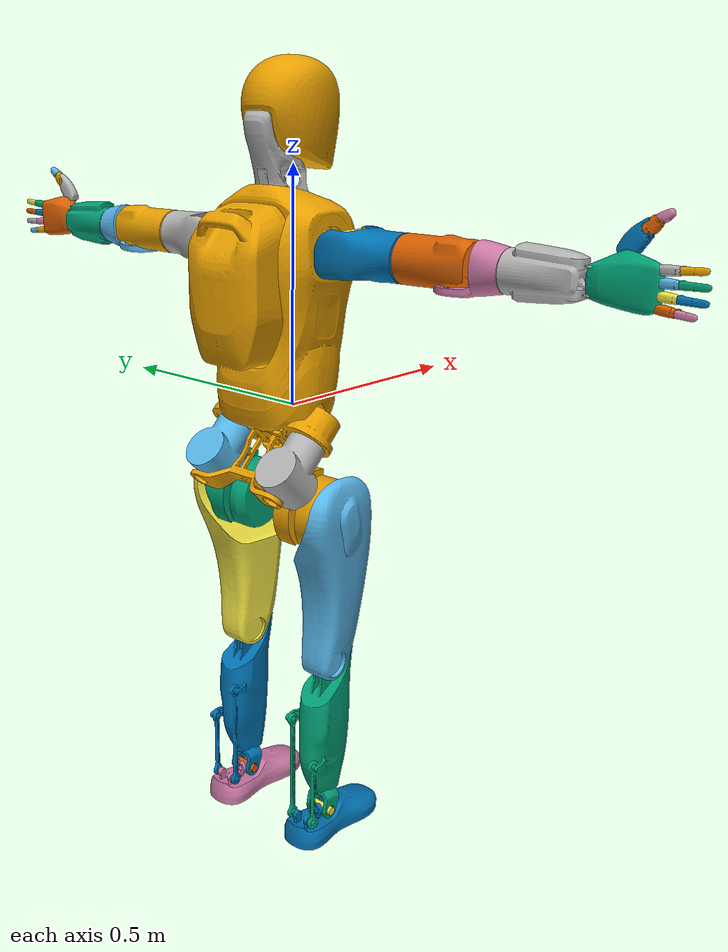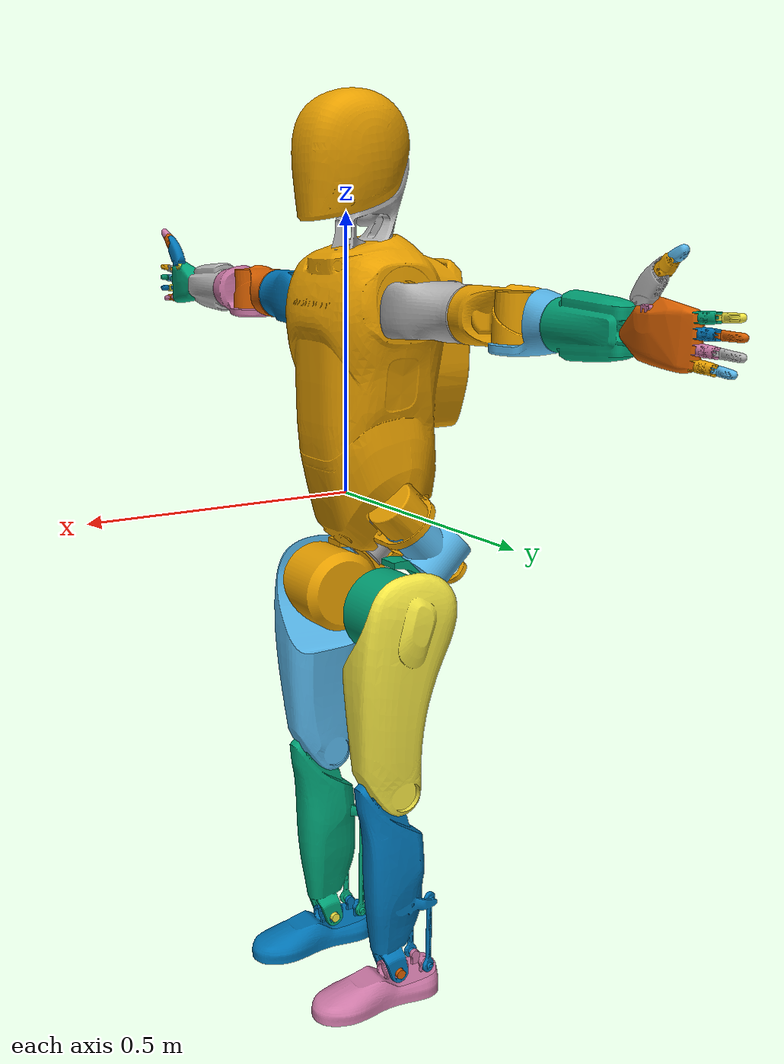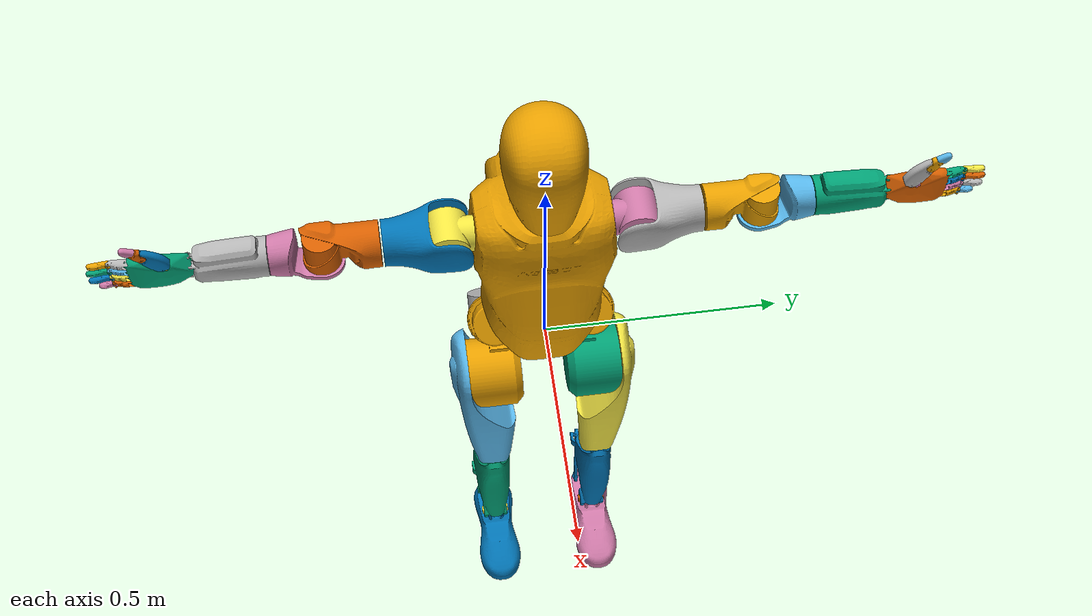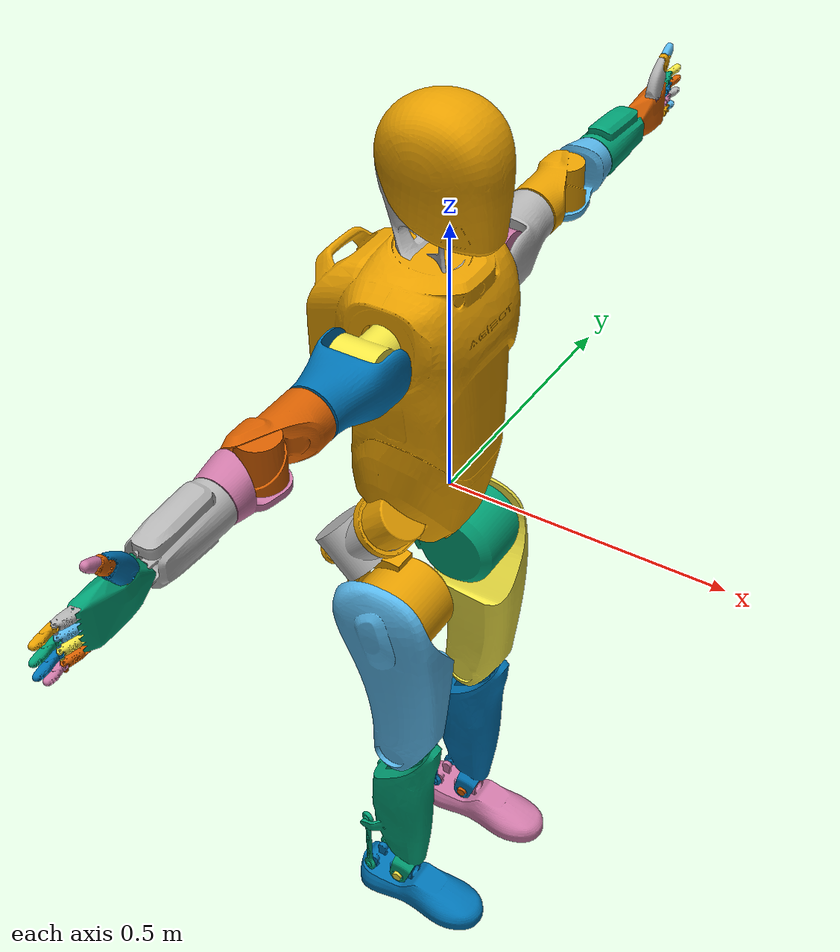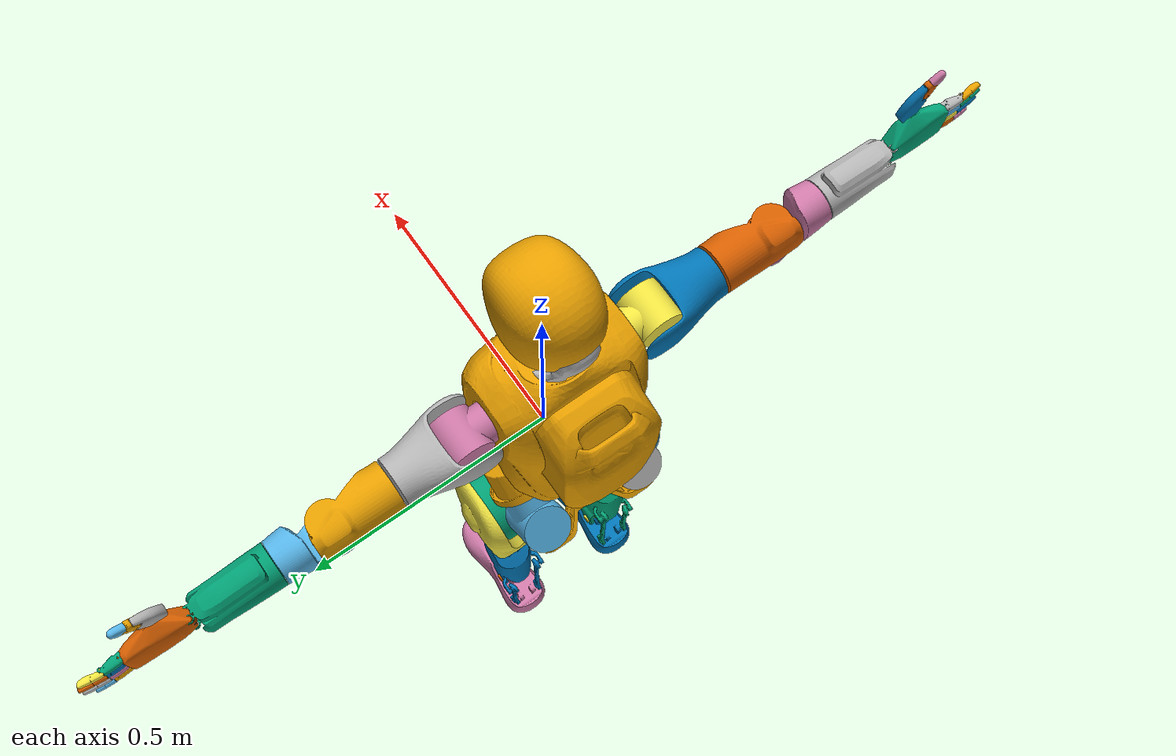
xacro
<?xml version="1.0" ?>
<!-- |    Complete Robot Description for Agibot A2                                     | -->
<!-- |    This file includes the base robot structure and both arms                    | -->
<robot name="Agibot A2" xmlns:xacro="http://www.ros.org/wiki/xacro">
	<!-- Include arm, hand and leg macros -->
	<xacro:include filename="$(find agibot_a2_description)/xacro/arm.xacro"/>
	<xacro:include filename="$(find agibot_a2_description)/xacro/hand.xacro"/>
	<xacro:include filename="$(find agibot_a2_description)/xacro/leg.xacro"/>

	<link name="base_link">
		<inertial>
			<origin xyz="-0.07088950 -0.00016512 0.16138088"/>
			<mass value="18.89945962"/>
			<inertia ixx="0.59376016" iyy="0.55503329" izz="0.18455985" ixy="0.00015891" ixz="0.00353796" iyz="-0.00043902"/>
		</inertial>
		<visual>
			<geometry>
				<mesh filename="file://$(find agibot_a2_description)/meshes/body/visual/body.obj"/>
			</geometry>
		</visual>
		<collision>
			<geometry>
				<mesh filename="file://$(find agibot_a2_description)/meshes/body/collision/body.stl"/>
			</geometry>
		</collision>
	</link>

	<!-- left leg -->
	<xacro:A2Leg name="left" direction="1" parent_link="base_link"/>

	<!-- right leg -->
	<xacro:A2Leg name="right" direction="-1" parent_link="base_link"/>

	<!-- left arm -->
	<xacro:A2Arm name="left" direction="1"/>

	<!-- Left hand fingers -->
	<xacro:A2Hand name="left" direction="1" parent_link="left_arm_link07"/>

	<!-- right arm -->
	<xacro:A2Arm name="right" direction="-1"/>

	<!-- Right hand fingers -->
	<xacro:A2Hand name="right" direction="-1" parent_link="right_arm_link07"/>

	<link name="head_link01">
		<inertial>
			<origin xyz="-0.00154008 0.00649494 0.11627791"/>
			<mass value="1.39889495"/>
			<inertia ixx="0.00378192" iyy="0.00393150" izz="0.00152438" ixy="-0.00000282" ixz="0.00029671" iyz="-0.00021616"/>
		</inertial>
		<visual>
			<geometry>
				<mesh filename="file://$(find agibot_a2_description)/meshes/body/visual/head1.obj"/>
			</geometry>
		</visual>
		<collision>
			<geometry>
				<mesh filename="file://$(find agibot_a2_description)/meshes/body/collision/head1.stl"/>
			</geometry>
		</collision>
	</link>

	<joint name="head_joint1" type="fixed">
		<origin xyz="-0.03779 0 0.4101"/>
		<parent link="base_link"/>
		<child link="head_link01"/>
		<axis xyz="0 0 1"/>
		<limit lower="-2.2" upper="2.2" effort="0" velocity="0"/>
	</joint>

	<link name="head_link02">
		<inertial>
			<origin xyz="0.03256533 0.02834041 0.00009476"/>
			<mass value="0.65606942"/>
			<inertia ixx="0.00350189" iyy="0.00369636" izz="0.00360950" ixy="0.00039729" ixz="-0.00000150" iyz="0.00000231"/>
		</inertial>
		<visual>
			<geometry>
				<mesh filename="file://$(find agibot_a2_description)/meshes/body/visual/head2.obj"/>
			</geometry>
		</visual>
		<collision>
			<geometry>
				<mesh filename="file://$(find agibot_a2_description)/meshes/body/collision/head2.stl"/>
			</geometry>
		</collision>
	</link>

	<joint name="head_joint2" type="fixed">
		<origin xyz="-0.00501 0 0.16059" rpy="1.5708 0 0"/>
		<parent link="head_link01"/>
		<child link="head_link02"/>
		<axis xyz="0 0 1"/>
		<limit lower="-0.5" upper="0.5" effort="0" velocity="0"/>
	</joint>
</robot>

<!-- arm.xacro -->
<robot name="a2_arm" xmlns:xacro="http://www.ros.org/wiki/xacro">

	<!-- A2 Arm Macro
		Parameters:
		- name: arm name prefix (e.g., "left" or "right")
		- direction: direction multiplier (1 for left, -1 for right)
	-->
	<xacro:macro name="A2Arm" params="name direction:=1">
		<xacro:property name="prefix" value="${name + '_' if name else ''}"/>
		<xacro:property name="dir" value="${direction}"/>

		<!-- Arm base link -->
		<link name="${prefix}arm_base"/>
		<joint name="${prefix}arm_base_joint" type="fixed">
			<origin rpy="1.5707963  0 0" xyz="-0.03779 0 0.3421"/>
			<parent link="base_link"/>
			<child link="${prefix}arm_base"/>
		</joint>

		<!-- Arm link 01 -->
		<link name="${prefix}arm_link01">
			<inertial>
				<origin xyz="-0.002330 0.008782 ${dir*0.032870}"/>
				<mass value="0.276944"/>
				<inertia ixx="0.000595" iyy="0.000381" izz="0.000542" ixy="-0.000006" ixz="${-dir*0.000002}"
								 iyz="${dir*0.000053}"/>
			</inertial>
			<visual>
				<geometry>
					<mesh filename="file://$(find agibot_a2_description)/meshes/arm/visual/link1.obj" scale="1 1 ${dir}"/>
				</geometry>
			</visual>
			<collision>
				<geometry>
					<mesh filename="file://$(find agibot_a2_description)/meshes/arm/collision/link1.stl" scale="1 1 ${dir}"/>
				</geometry>
			</collision>
		</link>

		<joint name="${prefix}arm_joint1" type="revolute">
			<origin xyz="-0.0 0.0 ${-dir*0.191}" rpy="0 0 -1.5707963"/>
			<parent link="${prefix}arm_base"/>
			<child link="${prefix}arm_link01"/>
			<axis xyz="0 0 1"/>
			<limit lower="-2.967" upper="2.967" effort="0" velocity="0"/>
		</joint>

		<!-- Arm link 02 -->
		<link name="${prefix}arm_link02">
			<inertial>
				<origin xyz="-0.000451 ${-dir*0.051682} -0.001084"/>
				<mass value="2.852114"/>
				<inertia ixx="0.011984" iyy="0.002880" izz="0.011709" ixy="${dir*0.000039}" ixz="0.000003"
								 iyz="${dir*0.000140}"/>
			</inertial>
			<visual>
				<geometry>
					<mesh filename="file://$(find agibot_a2_description)/meshes/arm/visual/link2.obj" scale="1 ${dir} 1"/>
				</geometry>
			</visual>
			<collision>
				<geometry>
					<mesh filename="file://$(find agibot_a2_description)/meshes/arm/collision/link2.stl" scale="1 ${dir} 1"/>
				</geometry>
			</collision>
		</link>

		<joint name="${prefix}arm_joint2" type="revolute">
			<origin xyz="0 0 -0.0" rpy="1.5707963 0 0"/>
			<parent link="${prefix}arm_link01"/>
			<child link="${prefix}arm_link02"/>
			<axis xyz="0 0 ${dir}"/>
			<limit lower="-0.523598767" upper="1.658062761" effort="0" velocity="0"/>
		</joint>

		<!-- Arm link 03 -->
		<link name="${prefix}arm_link03">
			<inertial>
				<origin xyz="-0.000673 0.001065 ${dir*0.079222}"/>
				<mass value="1.310295"/>
				<inertia ixx="0.002030" iyy="0.002186" izz="0.001189" ixy="-0.000008" ixz="${dir*0.000005}"
								 iyz="${dir*0.000018}"/>
			</inertial>
			<visual>
				<geometry>
					<mesh filename="file://$(find agibot_a2_description)/meshes/arm/visual/link3.obj" scale="1 1 ${dir}"/>
				</geometry>
			</visual>
			<collision>
				<geometry>
					<mesh filename="file://$(find agibot_a2_description)/meshes/arm/collision/link3.stl" scale="1 1 ${dir}"/>
				</geometry>
			</collision>
		</link>

		<joint name="${prefix}arm_joint3" type="revolute">
			<origin rpy="1.5707963 0 0" xyz="0 ${-dir*0.154} 0"/>
			<parent link="${prefix}arm_link02"/>
			<child link="${prefix}arm_link03"/>
			<axis xyz="0 0 1"/>
			<limit lower="-2.967" upper="2.967" effort="0" velocity="0"/>
		</joint>

		<!-- Arm link 04 -->
		<link name="${prefix}arm_link04">
			<inertial>
				<origin xyz="0.000273 ${-dir*0.066853} -0.007408"/>
				<mass value="0.677343"/>
				<inertia ixx="0.000893" iyy="0.000508" izz="0.000767" ixy="${-dir*0.000001}" ixz="-0.000002"
								 iyz="${dir*0.000238}"/>
			</inertial>
			<visual>
				<geometry>
					<mesh filename="file://$(find agibot_a2_description)/meshes/arm/visual/link4.obj" scale="1 ${dir} 1"/>
				</geometry>
			</visual>
			<collision>
				<geometry>
					<mesh filename="file://$(find agibot_a2_description)/meshes/arm/collision/link4.stl" scale="1 ${dir} 1"/>
				</geometry>
			</collision>
		</link>

		<joint name="${prefix}arm_joint4" type="revolute">
			<origin xyz="0 0 ${dir*0.093}" rpy="-1.5707963  0  1.5707963"/>
			<parent link="${prefix}arm_link03"/>
			<child link="${prefix}arm_link04"/>
			<axis xyz="0 0 ${-dir}"/>
			<limit lower="0" upper="2.094395067" effort="0" velocity="0"/>
		</joint>

		<!-- Arm link 05 -->
		<link name="${prefix}arm_link05">
			<inertial>
				<origin xyz="-0.001962 -0.000002 ${dir*0.071786}"/>
				<mass value="0.260886"/>
				<inertia ixx="0.000638" iyy="0.000618" izz="0.000229" ixy="0.000000" ixz="${dir*0.000015}" iyz="0.000000"/>
			</inertial>
			<visual>
				<geometry>
					<mesh filename="file://$(find agibot_a2_description)/meshes/arm/visual/link5.obj" scale="1 1 ${dir}"/>
				</geometry>
			</visual>
			<collision>
				<geometry>
					<mesh filename="file://$(find agibot_a2_description)/meshes/arm/collision/link5.stl" scale="1 1 ${dir}"/>
				</geometry>
			</collision>
		</link>

		<joint name="${prefix}arm_joint5" type="revolute">
			<origin xyz="0  ${-dir*0.103} 0.0" rpy="1.5707963 0 0"/>
			<parent link="${prefix}arm_link04"/>
			<child link="${prefix}arm_link05"/>
			<axis xyz="0 0 1"/>
			<limit lower="-2.87979" upper="2.87979" velocity="0.0" effort="0"/>
		</joint>

		<!-- Arm link 06 -->
		<link name="${prefix}arm_link06">
			<inertial>
				<origin xyz="0.00018011 -0.00021701 0.00000000"/>
				<mass value="0.02504627"/>
				<inertia ixx="0.00000197" iyy="0.00000173" izz="0.00000071" ixy="0.00000000" ixz="0.00000000" iyz="0.00000000"/>
			</inertial>
			<visual name="">
				<geometry>
					<mesh filename="file://$(find agibot_a2_description)/meshes/arm/visual/link6.obj"/>
				</geometry>
			</visual>
		</link>

		<joint name="${prefix}arm_joint6" type="revolute">
			<origin xyz="-0.01 0 ${dir*0.1595}" rpy="-1.5707963 1.5707963 0"/>
			<parent link="${prefix}arm_link05"/>
			<child link="${prefix}arm_link06"/>
			<axis xyz="0 0 1"/>
			<limit lower="-0.785398" upper="0.785398" velocity="0.0" effort="0"/>
		</joint>

		<!-- Arm link 07 -->
		<link name="${prefix}arm_link07">
			<inertial>
				<origin xyz="${-dir*0.01211757} -0.00009712 0.00886324"/>
				<mass value="0.05050219"/>
				<inertia ixx="0.00000828" iyy="0.00001140" izz="0.00001294" ixy="${dir*0.00000006}" ixz="${-dir*0.00000179}"
								 iyz="0.00000004"/>
			</inertial>
			<visual>
				<geometry>
					<mesh filename="file://$(find agibot_a2_description)/meshes/arm/visual/link7.obj" scale="${dir} 1 1"/>
				</geometry>
			</visual>
		</link>

		<joint name="${prefix}arm_joint7" type="revolute">
			<origin xyz="0 0 0" rpy="1.5707963 0 0"/>
			<parent link="${prefix}arm_link06"/>
			<child link="${prefix}arm_link07"/>
			<axis xyz="0 0 1"/>
			<limit lower="-0.5236" upper="0.5236" effort="0" velocity="0"/>
		</joint>

	</xacro:macro>

</robot>

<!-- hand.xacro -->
<robot name="a2_hand" xmlns:xacro="http://www.ros.org/wiki/xacro">

	<xacro:macro name="A2Hand" params="name direction:=1 parent_link">
		<xacro:property name="prefix" value="${name + '_' if name else ''}"/>
		<xacro:property name="prefix_upper" value="${'L' if name == 'left' else 'R'}_"/>
		<xacro:property name="dir" value="${direction}"/>

		<!-- Hand connection joint -->
		<joint name="${prefix}arm_joint07_fixed" type="fixed">
			<origin rpy="${dir*1.5707963} 0 -1.5707963" xyz="0 0 0"/>
			<parent link="${parent_link}"/>
			<child link="${prefix}hand"/>
		</joint>

		<!-- Hand link -->
		<link name="${prefix}hand">
			<inertial>
				<origin xyz="-0.00174346841701916 ${dir*0.00527579194314928} 0.0630645733021228"/>
				<mass value="0.153951635222705"/>
				<inertia ixx="8.73156029524248e-05" ixy="${dir*2.76454788715318e-07}" ixz="-6.56394653650542e-07"
								 iyy="0.00013139692405234" iyz="${dir*2.87478350015867e-06}" izz="6.85856479957296e-05"/>
			</inertial>
			<visual>
				<geometry>
					<mesh filename="file://$(find agibot_a2_description)/meshes/hand/visual/paw.obj" scale="1 ${direction} 1"/>
				</geometry>
			</visual>
			<collision>
				<geometry>
					<mesh filename="file://$(find agibot_a2_description)/meshes/hand/collision/paw.stl"
								scale="1 ${direction} 1"/>
				</geometry>
			</collision>
		</link>

		<!-- Thumb swing -->
		<link name="${prefix_upper}thumb_swing">
			<inertial>
				<origin xyz="-0.00794385183139725 ${-dir*0.000525120612119151} 0.00647353069427367"/>
				<mass value="0.00344766519929713"/>
				<inertia ixx="9.46681111469513e-08" ixy="${-dir*2.82870154716105e-09}" ixz="6.48803833821274e-10"
								 iyy="1.37273777260403e-07" iyz="${dir*4.31486298309418e-11}" izz="9.49138662594884e-08"/>
			</inertial>
			<visual>
				<geometry>
					<mesh filename="file://$(find agibot_a2_description)/meshes/hand/visual/thumb_swing.obj"
								scale="1 ${direction} 1"/>
				</geometry>
			</visual>
			<collision>
				<geometry>
					<mesh filename="file://$(find agibot_a2_description)/meshes/hand/collision/R_thumb_swing_hull.stl"
								scale="1 ${-direction} 1"/>
				</geometry>
			</collision>
		</link>

		<joint name="${prefix_upper}thumb_swing_joint" type="revolute">
			<origin xyz="-0.029178 ${-dir*0.01525} 0.0384"/>
			<parent link="${name}_hand"/>
			<child link="${prefix_upper}thumb_swing"/>
			<axis xyz="0 0 ${dir}"/>
			<limit lower="0" upper="2.286" effort="1" velocity="100"/>
		</joint>

		<!-- Thumb 1 -->
		<link name="${prefix_upper}thumb_1">
			<inertial>
				<origin xyz="0.0259002099345081 0.0127439796878742 ${dir*1.99493196570838e-05}"/>
				<mass value="0.0221480762523199"/>
				<inertia ixx="3.31629342056679e-06" ixy="-8.26036894806839e-07" ixz="${dir*5.55467469886505e-10}"
								 iyy="3.39227446692523e-06" iyz="${dir*2.74467395508138e-09}" izz="5.78826252617142e-06"/>
			</inertial>
			<visual>
				<geometry>
					<mesh filename="file://$(find agibot_a2_description)/meshes/hand/visual/thumb_1.obj"
								scale="1 1 ${direction}"/>
				</geometry>
			</visual>
			<collision>
				<geometry>
					<mesh filename="file://$(find agibot_a2_description)/meshes/hand/collision/R_thumb_1_hull.stl"
								scale="1 1 ${-direction}"/>
				</geometry>
			</collision>
		</link>

		<joint name="${prefix_upper}thumb_joint" type="revolute">
			<origin xyz="-0.013367 0.00088357 ${-dir*0.0052468}" rpy="1.5708 0 3.0756"/>
			<parent link="${prefix_upper}thumb_swing"/>
			<child link="${prefix_upper}thumb_1"/>
			<axis xyz="0 0 1"/>
			<limit lower="0" upper="0.78" effort="1" velocity="100"/>
		</joint>

		<!-- Thumb 2 -->
		<link name="${prefix_upper}thumb_2">
			<inertial>
				<origin xyz="0.0112938280283933 0.00190048762153883 ${-dir*0.00768932284017045}"/>
				<mass value="0.00380031199387229"/>
				<inertia ixx="4.33768382054372e-07" ixy="-3.01457326686904e-08" ixz="${-dir*2.51640808750991e-11}"
								 iyy="3.41487853815651e-07" iyz="${-dir*8.87078510861614e-11}" izz="4.77629558482899e-07"/>
			</inertial>
			<visual>
				<geometry>
					<mesh filename="file://$(find agibot_a2_description)/meshes/hand/visual/thumb_2.obj"
								scale="1 1 ${direction}"/>
				</geometry>
			</visual>
			<collision>
				<geometry>
					<mesh filename="file://$(find agibot_a2_description)/meshes/hand/collision/R_thumb_2_hull.stl"
								scale="1 1 ${-direction}"/>
				</geometry>
			</collision>
		</link>

		<joint name="${prefix_upper}thumb_2_joint" type="revolute">
			<origin xyz="0.0389415822724812 0.0379042246431505 ${-dir*0.00770000000000043}"/>
			<parent link="${prefix_upper}thumb_1"/>
			<child link="${prefix_upper}thumb_2"/>
			<axis xyz="0 0 1"/>
			<limit lower="0" upper="0.9144" effort="1" velocity="100"/>
			<mimic joint="${prefix_upper}thumb_joint" multiplier="0.40" offset="0"/>
		</joint>

		<!-- Thumb 3 -->
		<link name="${prefix_upper}thumb_3">
			<inertial>
				<origin xyz="0.00856534554797862 0.00586022128255342 ${-dir*0.00530182283153385}"/>
				<mass value="0.0067706894584641"/>
				<inertia ixx="4.15501197420746e-07" ixy="-1.25284733421831e-07" ixz="${dir*1.14020106815917e-10}"
								 iyy="2.49677035533967e-07" iyz="${dir*1.89120892374144e-10}" izz="4.96219470794644e-07"/>
			</inertial>
			<visual>
				<geometry>
					<mesh filename="file://$(find agibot_a2_description)/meshes/hand/visual/thumb_3.obj"
								scale="1 1 ${direction}"/>
				</geometry>
			</visual>
			<collision>
				<geometry>
					<mesh filename="file://$(find agibot_a2_description)/meshes/hand/collision/R_thumb_3_hull.stl"
								scale="1 1 ${-direction}"/>
				</geometry>
			</collision>
		</link>

		<joint name="${prefix_upper}thumb_3_joint" type="revolute">
			<origin xyz="0.01728 0.014743 ${dir*0.0024}"/>
			<parent link="${prefix_upper}thumb_2"/>
			<child link="${prefix_upper}thumb_3"/>
			<axis xyz="0 0 1"/>
			<limit lower="0" upper="1.3716" effort="1" velocity="100"/>
			<mimic joint="${prefix_upper}thumb_joint" multiplier="0.60" offset="0"/>
		</joint>

		<!-- Index 1 -->
		<link name="${prefix_upper}index_1">
			<inertial>
				<origin xyz="${dir*0.00224105284932037} 0.012077244969504 -0.0060501936211354"/>
				<mass value="0.00439457695368253"/>
				<inertia ixx="6.7083586478962e-07" ixy="${dir*6.24488990875019e-09}" ixz="${-dir*3.08577901734797e-12}"
								 iyy="2.67077182124417e-07" iyz="6.36376851728619e-12" izz="6.64566137309628e-07"/>
			</inertial>
			<visual>
				<geometry>
					<mesh filename="file://$(find agibot_a2_description)/meshes/hand/visual/index_1.obj" scale="${direction} 1 1"/>
				</geometry>
			</visual>
			<collision>
				<geometry>
					<mesh filename="file://$(find agibot_a2_description)/meshes/hand/collision/R_index_1_hull.stl" scale="${-direction} 1 1"/>
				</geometry>
			</collision>
		</link>

		<joint name="${prefix_upper}index_joint" type="revolute">
			<origin xyz="-0.034645 ${dir*0.0059953} 0.11967" rpy="1.6319 0 -1.5708"/>
			<parent link="${name}_hand"/>
			<child link="${prefix_upper}index_1"/>
			<axis xyz="0 0 ${-dir}"/>
			<limit lower="0" upper="1.7" effort="1" velocity="100"/>
		</joint>

		<!-- Index 2 -->
		<link name="${prefix_upper}index_2">
			<inertial>
				<origin xyz="${dir*0.00267181156648408} 0.0187445889538955 -0.00504998556104182"/>
				<mass value="0.00571203807044643"/>
				<inertia ixx="8.55148442316881e-07" ixy="${-dir*8.71729684204069e-08}" ixz="${dir*8.24415168858219e-14}"
								 iyy="1.37439550017429e-07" iyz="-2.39445035228549e-12" izz="8.7133999943214e-07"/>
			</inertial>
			<visual>
				<geometry>
					<mesh filename="file://$(find agibot_a2_description)/meshes/hand/visual/index_2.obj" scale="${direction} 1 1"/>
				</geometry>
			</visual>
			<collision>
				<geometry>
					<mesh filename="file://$(find agibot_a2_description)/meshes/hand/collision/R_index_2_hull.stl" scale="${-direction} 1 1"/>
				</geometry>
			</collision>
		</link>

		<joint name="${prefix_upper}index_2_joint" type="revolute">
			<origin xyz="-0.00025731 0.032131 -0.001"/>
			<parent link="${prefix_upper}index_1"/>
			<child link="${prefix_upper}index_2"/>
			<axis xyz="0 0 ${-dir}"/>
			<limit lower="0" upper="1.7" effort="1" velocity="100"/>
			<mimic joint="${prefix_upper}index_joint" multiplier="1" offset="0"/>
		</joint>

		<!-- Middle 1 -->
		<link name="${prefix_upper}middle_1">
			<inertial>
				<origin xyz="${dir*0.00224109922728143} 0.0120773004987843 -0.00605026659163534"/>
				<mass value="0.00439459313596441"/>
				<inertia ixx="6.70837166910088e-07" ixy="${-dir*6.24455169745287e-09}" ixz="3.25321014718543e-12"
								 iyy="2.67075608382375e-07" iyz="7.72285454063169e-12" izz="6.64566599226699e-07"/>
			</inertial>
			<visual>
				<geometry>
					<mesh filename="file://$(find agibot_a2_description)/meshes/hand/visual/index_1.obj" scale="${direction} 1 1"/>
				</geometry>
			</visual>
			<collision>
				<geometry>
					<mesh filename="file://$(find agibot_a2_description)/meshes/hand/collision/R_index_1_hull.stl" scale="${-direction} 1 1"/>
				</geometry>
			</collision>
		</link>

		<joint name="${prefix_upper}middle_joint" type="revolute">
			<origin xyz="-0.014728 ${dir*0.0059953} 0.1205" rpy="1.5708 0 -1.5708"/>
			<parent link="${name}_hand"/>
			<child link="${prefix_upper}middle_1"/>
			<axis xyz="0 0 ${-dir}"/>
			<limit lower="0" upper="1.7" effort="1" velocity="100"/>
		</joint>

		<!-- Middle 2 -->
		<link name="${prefix_upper}middle_2">
			<inertial>
				<origin xyz="${dir*0.00298222684069903} 0.0208035344929268 -0.00505001299185808"/>
				<mass value="0.00621146132075292"/>
				<inertia ixx="1.14490560231061e-06" ixy="${-dir*9.72401476943198e-08}" ixz="${-dir*1.3517205790896e-13}"
								 iyy="1.43751808502962e-07" iyz="-2.47497784308553e-12" izz="1.15530613342501e-06"/>
			</inertial>
			<visual>
				<geometry>
					<mesh filename="file://$(find agibot_a2_description)/meshes/hand/visual/middle_2.obj" scale="${direction} 1 1"/>
				</geometry>
			</visual>
			<collision>
				<geometry>
					<mesh filename="file://$(find agibot_a2_description)/meshes/hand/collision/R_middle_2_hull.stl" scale="${-direction} 1 1"/>
				</geometry>
			</collision>
		</link>

		<joint name="${prefix_upper}middle_2_joint" type="revolute">
			<origin xyz="-0.000257313524408706 0.0321313914917268 -0.000999999999997433"/>
			<parent link="${prefix_upper}middle_1"/>
			<child link="${prefix_upper}middle_2"/>
			<axis xyz="0 0 ${-dir}"/>
			<limit lower="0" upper="1.7" effort="1" velocity="100"/>
			<mimic joint="${prefix_upper}middle_joint" multiplier="1" offset="0"/>
		</joint>

		<!-- Ring 1 -->
		<link name="${prefix_upper}ring_1">
			<inertial>
				<origin xyz="${dir*0.00224111083051005} 0.0120773228749342 -0.00605025463459374"/>
				<mass value="0.00439459971330683"/>
				<inertia ixx="6.70838404636804e-07" ixy="${dir*6.24505446614477e-09}" ixz="${dir*3.11377919594888e-12}"
								 iyy="2.67075452784363e-07" iyz="6.97432649840291e-12" izz="6.64567590491197e-07"/>
			</inertial>
			<visual>
				<geometry>
					<mesh filename="file://$(find agibot_a2_description)/meshes/hand/visual/index_1.obj" scale="${direction} 1 1"/>
				</geometry>
			</visual>
			<collision>
				<geometry>
					<mesh filename="file://$(find agibot_a2_description)/meshes/hand/collision/R_index_1_hull.stl" scale="${-direction} 1 1"/>
				</geometry>
			</collision>
		</link>

		<joint name="${prefix_upper}ring_joint" type="revolute">
			<origin xyz="0.0060088 ${dir*0.0059953} 0.12031" rpy="1.5184 0 -1.5708"/>
			<parent link="${name}_hand"/>
			<child link="${prefix_upper}ring_1"/>
			<axis xyz="0 0 ${-dir}"/>
			<limit lower="0" upper="1.7" effort="1" velocity="100"/>
		</joint>

		<!-- Ring 2 -->
		<link name="${prefix_upper}ring_2">
			<inertial>
				<origin xyz="${dir*0.00298222724294862} 0.0208035302665959 -0.00505000729887283"/>
				<mass value="0.0062114646816875"/>
				<inertia ixx="1.14490597705472e-06" ixy="${dir*9.724016633507e-08}" ixz="${dir*1.8724939827074e-14}"
								 iyy="1.43751909738487e-07" iyz="-2.55418863081498e-12" izz="1.15530647485239e-06"/>
			</inertial>
			<visual>
				<geometry>
					<mesh filename="file://$(find agibot_a2_description)/meshes/hand/visual/middle_2.obj" scale="${direction} 1 1"/>
				</geometry>
			</visual>
			<collision>
				<geometry>
					<mesh filename="file://$(find agibot_a2_description)/meshes/hand/collision/R_middle_2_hull.stl" scale="${-direction} 1 1"/>
				</geometry>
			</collision>
		</link>

		<joint name="${prefix_upper}ring_2_joint" type="revolute">
			<origin xyz="-0.00025731 0.032131 -0.001"/>
			<parent link="${prefix_upper}ring_1"/>
			<child link="${prefix_upper}ring_2"/>
			<axis xyz="0 0 ${-dir}"/>
			<limit lower="0" upper="1.7" effort="1" velocity="100"/>
			<mimic joint="${prefix_upper}ring_joint" multiplier="1" offset="0"/>
		</joint>

		<!-- Pinky 1 -->
		<link name="${prefix_upper}pinky_1">
			<inertial>
				<origin xyz="${dir*0.00224116685703836} 0.0120774556144769 -0.00605021177667593"/>
				<mass value="0.00439465496713926"/>
				<inertia ixx="6.70846058569314e-07" ixy="${-dir*6.24765025269437e-09}" ixz="${-dir*2.14363990209694e-12}"
								 iyy="2.67077034128326e-07" iyz="4.49364771164151e-12" izz="6.64575163698131e-07"/>
			</inertial>
			<visual>
				<geometry>
					<mesh filename="file://$(find agibot_a2_description)/meshes/hand/visual/index_1.obj" scale="${direction} 1 1"/>
				</geometry>
			</visual>
			<collision>
				<geometry>
					<mesh filename="file://$(find agibot_a2_description)/meshes/hand/collision/R_index_1_hull.stl" scale="${-direction} 1 1"/>
				</geometry>
			</collision>
		</link>

		<joint name="${prefix_upper}pinky_joint" type="revolute">
			<origin xyz="0.026254 ${dir*0.0059953} 0.11901" rpy="1.4661 0 -1.5708"/>
			<parent link="${name}_hand"/>
			<child link="${prefix_upper}pinky_1"/>
			<axis xyz="0 0 ${-dir}"/>
			<limit lower="0" upper="1.7" effort="1" velocity="100"/>
		</joint>

		<!-- Pinky 2 -->
		<link name="${prefix_upper}pinky_2">
			<inertial>
				<origin xyz="${dir*0.00379562052007763} 0.0143619415198121 -0.00504990649038004"/>
				<mass value="0.00441618939121693"/>
				<inertia ixx="4.4165258349127e-07" ixy="${dir*2.35241296174338e-08}" ixz="${-dir*1.03160129872049e-12}"
								 iyy="9.72293330312645e-08" iyz="3.91885258086726e-12" izz="4.50179231370321e-07"/>
			</inertial>
			<visual>
				<geometry>
					<mesh filename="file://$(find agibot_a2_description)/meshes/hand/visual/pinky_2.obj" scale="${direction} 1 1"/>
				</geometry>
			</visual>
			<collision>
				<geometry>
					<mesh filename="file://$(find agibot_a2_description)/meshes/hand/collision/R_pinky_2_hull.stl" scale="${-direction} 1 1"/>
				</geometry>
			</collision>
		</link>

		<joint name="${prefix_upper}pinky_2_joint" type="revolute">
			<origin xyz="-0.00025731 0.032131 -0.001"/>
			<parent link="${prefix_upper}pinky_1"/>
			<child link="${prefix_upper}pinky_2"/>
			<axis xyz="0 0 ${-dir}"/>
			<limit lower="0" upper="1.7" effort="1" velocity="100"/>
			<mimic joint="${prefix_upper}pinky_joint" multiplier="1" offset="0"/>
		</joint>

	</xacro:macro>

</robot>

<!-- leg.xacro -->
<robot name="a2_leg" xmlns:xacro="http://www.ros.org/wiki/xacro">

	<!-- A2 Leg Macro
		Parameters:
		- name: leg name prefix (e.g., "left" or "right")
		- direction: direction multiplier (1 for left, -1 for right)
		- parent_link: parent link name (usually "base_link")
	-->
	<xacro:macro name="A2Leg" params="name direction:=1 parent_link">
		<xacro:property name="prefix" value="${name + '_' if name else ''}"/>
		<xacro:property name="dir" value="${direction}"/>

		<!-- Hip roll -->
		<link name="${prefix}hip_roll">
			<inertial>
				<origin xyz="${dir*0.00011252} ${dir*0.02130615} -0.07465143"/>
				<mass value="2.39059365"/>
				<inertia ixx="0.00381223" iyy="0.00368166" izz="0.00334373" ixy="${-dir*0.00000253}" ixz="${dir*0.00000433}" iyz="0.00019809"/>
			</inertial>
			<visual>
				<geometry>
					<mesh filename="file://$(find agibot_a2_description)/meshes/leg/visual/hip_roll.obj"/>
				</geometry>
			</visual>
			<collision>
				<geometry>
					<mesh filename="file://$(find agibot_a2_description)/meshes/leg/collision/hip_roll.stl"/>
				</geometry>
			</collision>
		</link>

		<joint name="${prefix}hip_roll" type="revolute">
			<origin xyz="-0.0808 ${dir*0.105} -0.0652" rpy="0.7854 0 1.5708"/>
			<parent link="${parent_link}"/>
			<child link="${prefix}hip_roll"/>
			<axis xyz="0 0 1"/>
			<limit lower="-0.698" upper="0.698" effort="120" velocity="12"/>
		</joint>

		<!-- Hip yaw -->
		<link name="${prefix}hip_yaw">
			<inertial>
				<origin xyz="-0.00012288 ${dir*0.01576460} 0.10828703"/>
				<mass value="3.79911511"/>
				<inertia ixx="0.00941292" iyy="0.01442888" izz="0.00698406" ixy="${dir*0.00000766}" ixz="0.00000238" iyz="${-dir*0.00055185}"/>
			</inertial>
			<visual>
				<geometry>
					<mesh filename="file://$(find agibot_a2_description)/meshes/leg/visual/hip_yaw.obj" scale="1 ${direction} 1"/>
				</geometry>
			</visual>
			<collision>
				<geometry>
					<mesh filename="file://$(find agibot_a2_description)/meshes/leg/collision/hip_yaw.stl" scale="1 ${direction} 1"/>
				</geometry>
			</collision>
		</link>

		<joint name="${prefix}hip_yaw" type="revolute">
			<origin xyz="0 -0.017 -0.0682" rpy="1.5708 -1.5708 0"/>
			<parent link="${prefix}hip_roll"/>
			<child link="${prefix}hip_yaw"/>
			<axis xyz="0 0 1"/>
			<limit lower="-1.57" upper="1.57" effort="120" velocity="12"/>
		</joint>

		<!-- Hip pitch -->
		<link name="${prefix}hip_pitch">
			<inertial>
				<origin xyz="-0.06943423 0.00469099 ${dir*0.02228242}"/>
				<mass value="5.92461880"/>
				<inertia ixx="0.01406779" iyy="0.08875802" izz="0.09356940" ixy="0.00370132" ixz="${-dir*0.00808512}" iyz="${dir*0.00067639}"/>
			</inertial>
			<visual>
				<geometry>
					<mesh filename="file://$(find agibot_a2_description)/meshes/leg/visual/hip_pitch.obj" scale="1 1 ${direction}"/>
				</geometry>
			</visual>
			<collision>
				<geometry>
					<mesh filename="file://$(find agibot_a2_description)/meshes/leg/collision/hip_pitch.stl" scale="1 1 ${direction}"/>
				</geometry>
			</collision>
		</link>

		<joint name="${prefix}hip_pitch" type="revolute">
			<origin xyz="0 ${-dir*0.020} 0.1205" rpy="1.5708 0.7854 0"/>
			<parent link="${prefix}hip_yaw"/>
			<child link="${prefix}hip_pitch"/>
			<axis xyz="0 0 1"/>
			<limit lower="-1.919862144" upper="0.78539815" effort="140" velocity="12"/>
		</joint>

		<!-- Tarsus -->
		<link name="${prefix}tarsus">
			<inertial>
				<origin xyz="-0.17711952 0.00417209 ${dir*0.00013325}"/>
				<mass value="3.02166726"/>
				<inertia ixx="0.00286094" iyy="0.02537518" izz="0.02674320" ixy="-0.00112212" ixz="${dir*0.00004708}" iyz="${dir*0.00001928}"/>
			</inertial>
			<visual>
				<geometry>
					<mesh filename="file://$(find agibot_a2_description)/meshes/leg/visual/tarsus.obj" scale="1 1 ${direction}"/>
				</geometry>
			</visual>
			<collision>
				<geometry>
					<mesh filename="file://$(find agibot_a2_description)/meshes/leg/collision/tarsus.stl" scale="1 1 ${direction}"/>
				</geometry>
			</collision>
		</link>

		<joint name="${prefix}tarsus" type="revolute">
			<origin xyz="-0.34 0 0"/>
			<parent link="${prefix}hip_pitch"/>
			<child link="${prefix}tarsus"/>
			<axis xyz="0 0 1"/>
			<limit lower="-0.087266461" upper="2.443460911" effort="140" velocity="12"/>
		</joint>

		<!-- Toe pitch -->
		<link name="${prefix}toe_pitch">
			<inertial>
				<mass value="0.08772028"/>
				<inertia ixx="0.00001572" iyy="0.00001128" izz="0.00001148" ixy="0.0" ixz="0.0" iyz="0.0"/>
			</inertial>
			<visual>
				<geometry>
					<mesh filename="file://$(find agibot_a2_description)/meshes/leg/visual/toe_pitch.obj"/>
				</geometry>
			</visual>
		</link>

		<joint name="${prefix}toe_pitch" type="revolute">
			<origin xyz="-0.377 0 0"/>
			<parent link="${prefix}tarsus"/>
			<child link="${prefix}toe_pitch"/>
			<axis xyz="0 0 1"/>
			<limit lower="-1.047197533" upper="0.523598767" effort="50" velocity="12"/>
		</joint>

		<!-- Toe roll -->
		<link name="${prefix}toe_roll">
			<inertial>
				<origin xyz="-0.03898340 ${dir*0.00002335} 0.03167314"/>
				<mass value="1.21058213"/>
				<inertia ixx="0.00701152" iyy="0.00653210" izz="0.00112114" ixy="${-dir*0.00000021}" ixz="0.00015476" iyz="${-dir*0.00000270}"/>
			</inertial>
			<visual>
				<geometry>
					<mesh filename="file://$(find agibot_a2_description)/meshes/leg/visual/toe_roll.obj"/>
				</geometry>
			</visual>
			<collision>
				<geometry>
					<mesh filename="file://$(find agibot_a2_description)/meshes/leg/collision/toe_roll.stl"/>
				</geometry>
			</collision>
		</link>

		<joint name="${prefix}toe_roll" type="revolute">
			<origin xyz="0 0 0" rpy="-1.5707963 0 0"/>
			<parent link="${prefix}toe_pitch"/>
			<child link="${prefix}toe_roll"/>
			<axis xyz="0 0 1"/>
			<limit lower="-0.488692182" upper="0.488692182" effort="50" velocity="12"/>
		</joint>

	</xacro:macro>

</robot>
